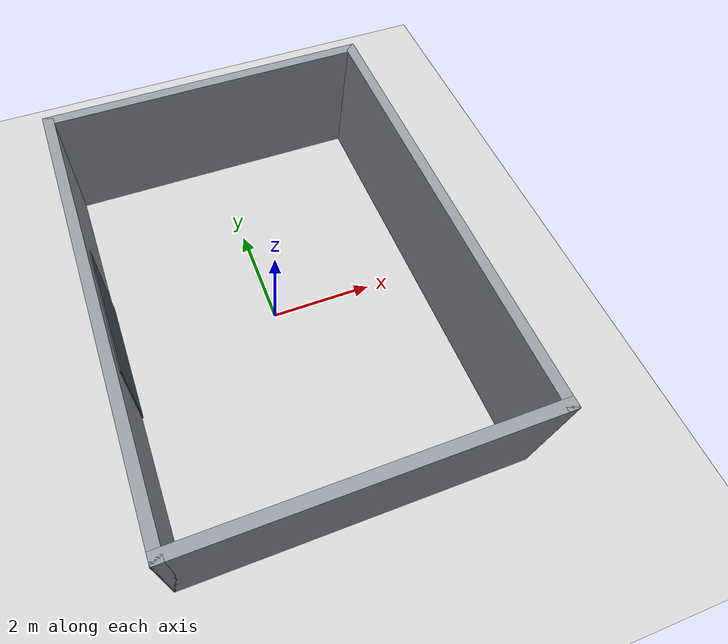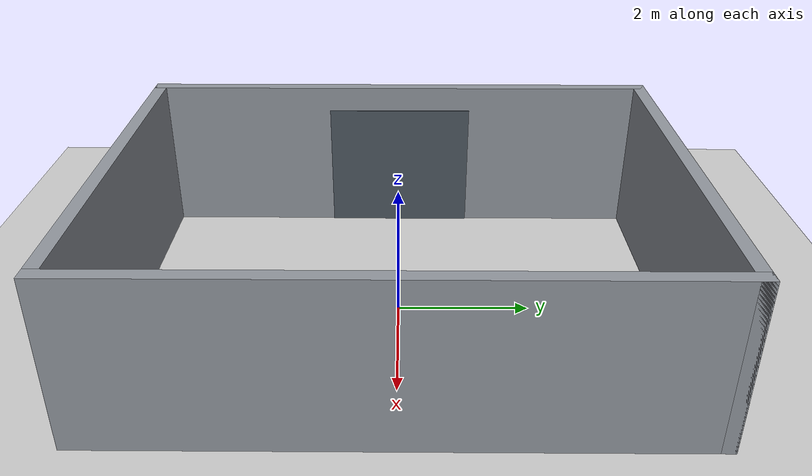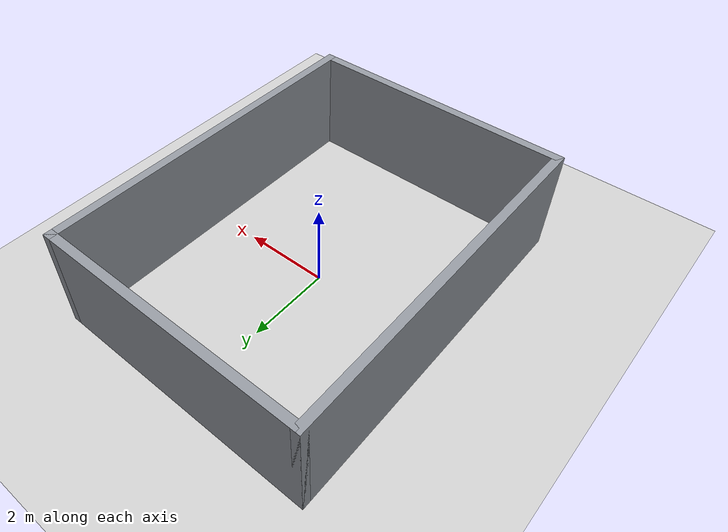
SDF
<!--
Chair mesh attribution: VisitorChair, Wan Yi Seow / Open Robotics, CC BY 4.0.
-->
<sdf version="1.6">
 <world name="locateanything_warehouse_colors">
  <include><uri>model://sun</uri></include>
  <include><uri>model://ground_plane</uri></include>
  <physics type="ode"><real_time_factor>1.0</real_time_factor><max_step_size>0.001</max_step_size></physics>
  <scene><ambient>0.5 0.5 0.5 1</ambient><background>0.7 0.75 0.8 1</background></scene>
  <plugin name="gazebo_ros_state" filename="libgazebo_ros_state.so">
   <ros><namespace>/gazebo</namespace></ros>
   <update_rate>10</update_rate>
  </plugin>
  <model name="la_colors_wall_east">
   <static>true</static>
   <pose>3.1 0 1.25 0 0 0</pose>
   <link name="body">
    <collision name="wall_collision"><geometry><box><size>0.2 8.4 2.5</size></box></geometry></collision>
    <visual name="wall_visual">
     <geometry><box><size>0.2 8.4 2.5</size></box></geometry>
     <material>
      <ambient>0.57 0.59 0.62 1</ambient>
      <diffuse>0.57 0.59 0.62 1</diffuse>
      <specular>0.04 0.04 0.04 1</specular>
     </material>
    </visual>
   </link>
  </model>
  <model name="la_colors_wall_west">
   <static>true</static>
   <pose>-3.1 0 1.25 0 0 0</pose>
   <link name="body">
    <collision name="wall_collision"><geometry><box><size>0.2 8.4 2.5</size></box></geometry></collision>
    <visual name="wall_visual">
     <geometry><box><size>0.2 8.4 2.5</size></box></geometry>
     <material>
      <ambient>0.57 0.59 0.62 1</ambient>
      <diffuse>0.57 0.59 0.62 1</diffuse>
      <specular>0.04 0.04 0.04 1</specular>
     </material>
    </visual>
   </link>
  </model>
  <model name="la_colors_wall_north">
   <static>true</static>
   <pose>0 4.1 1.25 0 0 0</pose>
   <link name="body">
    <collision name="wall_collision"><geometry><box><size>6.4 0.2 2.5</size></box></geometry></collision>
    <visual name="wall_visual">
     <geometry><box><size>6.4 0.2 2.5</size></box></geometry>
     <material>
      <ambient>0.57 0.59 0.62 1</ambient>
      <diffuse>0.57 0.59 0.62 1</diffuse>
      <specular>0.04 0.04 0.04 1</specular>
     </material>
    </visual>
   </link>
  </model>
  <model name="la_colors_wall_south">
   <static>true</static>
   <pose>0 -4.1 1.25 0 0 0</pose>
   <link name="body">
    <collision name="wall_collision"><geometry><box><size>6.4 0.2 2.5</size></box></geometry></collision>
    <visual name="wall_visual">
     <geometry><box><size>6.4 0.2 2.5</size></box></geometry>
     <material>
      <ambient>0.57 0.59 0.62 1</ambient>
      <diffuse>0.57 0.59 0.62 1</diffuse>
      <specular>0.04 0.04 0.04 1</specular>
     </material>
    </visual>
   </link>
  </model>
  <model name="la_colors_loading_door">
   <static>true</static>
   <pose>-2.985 0 1.05 0 0 0</pose>
   <link name="body">
    <visual name="panel">
     <geometry><box><size>0.02 2.4 2.1</size></box></geometry>
     <material><ambient>0.22 0.25 0.29 1</ambient><diffuse>0.30 0.34 0.38 1</diffuse></material>
    </visual>
   </link>
  </model>
 </world>
</sdf>
